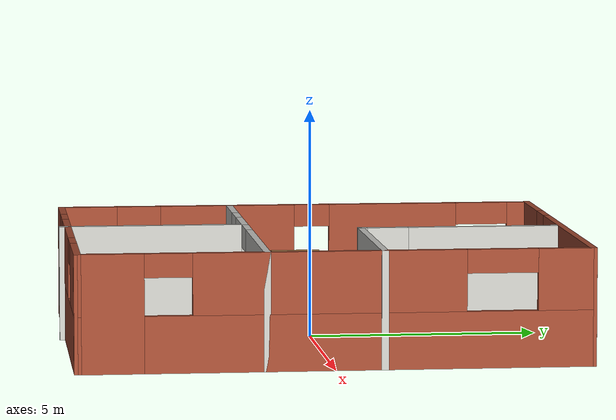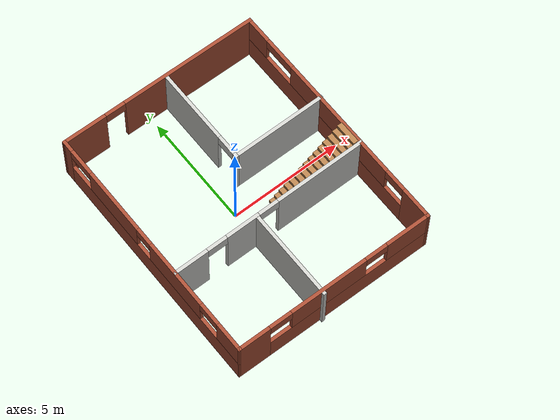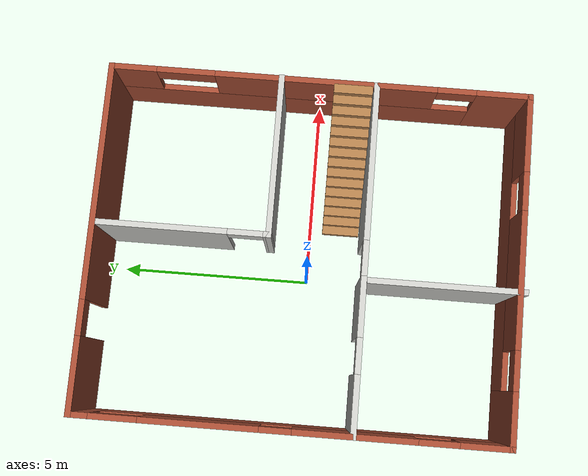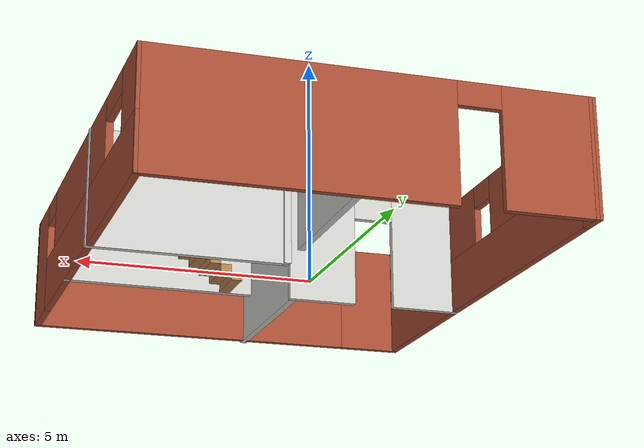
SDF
<?xml version='1.0'?>
<sdf version='1.6'>
  <model name='SinglefloorStructure'>
    <pose frame=''>0.515657 0.032341 0 0 -0 0</pose>
    <link name='Stairs_1'>
      <visual name='Stairs_1_Visual_0'>
        <pose frame=''>0.995916 -0.860774 0.083333 0 -0 1.5708</pose>
        <geometry>
          <box>
            <size>1 0.233333 0.166667</size>
          </box>
        </geometry>
        <material>
          <script>
            <uri>file://media/materials/scripts/gazebo.material</uri>
            <name>Gazebo/Wood</name>
          </script>
          <ambient>1 1 1 1</ambient>
        </material>
        <meta>
          <layer>0</layer>
        </meta>
      </visual>
      <collision name='Stairs_1_Collision_0'>
        <geometry>
          <box>
            <size>1 0.233333 0.166667</size>
          </box>
        </geometry>
        <pose frame=''>0.995916 -0.860774 0.083333 0 -0 1.5708</pose>
      </collision>
      <visual name='Stairs_1_Visual_1'>
        <pose frame=''>1.22925 -0.860774 0.25 0 -0 1.5708</pose>
        <geometry>
          <box>
            <size>1 0.233333 0.166667</size>
          </box>
        </geometry>
        <material>
          <script>
            <uri>file://media/materials/scripts/gazebo.material</uri>
            <name>Gazebo/Wood</name>
          </script>
          <ambient>1 1 1 1</ambient>
        </material>
        <meta>
          <layer>0</layer>
        </meta>
      </visual>
      <collision name='Stairs_1_Collision_1'>
        <geometry>
          <box>
            <size>1 0.233333 0.166667</size>
          </box>
        </geometry>
        <pose frame=''>1.22925 -0.860774 0.25 0 -0 1.5708</pose>
      </collision>
      <visual name='Stairs_1_Visual_2'>
        <pose frame=''>1.46258 -0.860774 0.416667 0 -0 1.5708</pose>
        <geometry>
          <box>
            <size>1 0.233333 0.166667</size>
          </box>
        </geometry>
        <material>
          <script>
            <uri>file://media/materials/scripts/gazebo.material</uri>
            <name>Gazebo/Wood</name>
          </script>
          <ambient>1 1 1 1</ambient>
        </material>
        <meta>
          <layer>0</layer>
        </meta>
      </visual>
      <collision name='Stairs_1_Collision_2'>
        <geometry>
          <box>
            <size>1 0.233333 0.166667</size>
          </box>
        </geometry>
        <pose frame=''>1.46258 -0.860774 0.416667 0 -0 1.5708</pose>
      </collision>
      <visual name='Stairs_1_Visual_3'>
        <pose frame=''>1.69592 -0.860774 0.583333 0 -0 1.5708</pose>
        <geometry>
          <box>
            <size>1 0.233333 0.166667</size>
          </box>
        </geometry>
        <material>
          <script>
            <uri>file://media/materials/scripts/gazebo.material</uri>
            <name>Gazebo/Wood</name>
          </script>
          <ambient>1 1 1 1</ambient>
        </material>
        <meta>
          <layer>0</layer>
        </meta>
      </visual>
      <collision name='Stairs_1_Collision_3'>
        <geometry>
          <box>
            <size>1 0.233333 0.166667</size>
          </box>
        </geometry>
        <pose frame=''>1.69592 -0.860774 0.583333 0 -0 1.5708</pose>
      </collision>
      <visual name='Stairs_1_Visual_4'>
        <pose frame=''>1.92925 -0.860773 0.75 0 -0 1.5708</pose>
        <geometry>
          <box>
            <size>1 0.233333 0.166667</size>
          </box>
        </geometry>
        <material>
          <script>
            <uri>file://media/materials/scripts/gazebo.material</uri>
            <name>Gazebo/Wood</name>
          </script>
          <ambient>1 1 1 1</ambient>
        </material>
        <meta>
          <layer>0</layer>
        </meta>
      </visual>
      <collision name='Stairs_1_Collision_4'>
        <geometry>
          <box>
            <size>1 0.233333 0.166667</size>
          </box>
        </geometry>
        <pose frame=''>1.92925 -0.860773 0.75 0 -0 1.5708</pose>
      </collision>
      <visual name='Stairs_1_Visual_5'>
        <pose frame=''>2.16258 -0.860773 0.916667 0 -0 1.5708</pose>
        <geometry>
          <box>
            <size>1 0.233333 0.166667</size>
          </box>
        </geometry>
        <material>
          <script>
            <uri>file://media/materials/scripts/gazebo.material</uri>
            <name>Gazebo/Wood</name>
          </script>
          <ambient>1 1 1 1</ambient>
        </material>
        <meta>
          <layer>0</layer>
        </meta>
      </visual>
      <collision name='Stairs_1_Collision_5'>
        <geometry>
          <box>
            <size>1 0.233333 0.166667</size>
          </box>
        </geometry>
        <pose frame=''>2.16258 -0.860773 0.916667 0 -0 1.5708</pose>
      </collision>
      <visual name='Stairs_1_Visual_6'>
        <pose frame=''>2.39592 -0.860773 1.08333 0 -0 1.5708</pose>
        <geometry>
          <box>
            <size>1 0.233333 0.166667</size>
          </box>
        </geometry>
        <material>
          <script>
            <uri>file://media/materials/scripts/gazebo.material</uri>
            <name>Gazebo/Wood</name>
          </script>
          <ambient>1 1 1 1</ambient>
        </material>
        <meta>
          <layer>0</layer>
        </meta>
      </visual>
      <collision name='Stairs_1_Collision_6'>
        <geometry>
          <box>
            <size>1 0.233333 0.166667</size>
          </box>
        </geometry>
        <pose frame=''>2.39592 -0.860773 1.08333 0 -0 1.5708</pose>
      </collision>
      <visual name='Stairs_1_Visual_7'>
        <pose frame=''>2.62925 -0.860773 1.25 0 -0 1.5708</pose>
        <geometry>
          <box>
            <size>1 0.233333 0.166667</size>
          </box>
        </geometry>
        <material>
          <script>
            <uri>file://media/materials/scripts/gazebo.material</uri>
            <name>Gazebo/Wood</name>
          </script>
          <ambient>1 1 1 1</ambient>
        </material>
        <meta>
          <layer>0</layer>
        </meta>
      </visual>
      <collision name='Stairs_1_Collision_7'>
        <geometry>
          <box>
            <size>1 0.233333 0.166667</size>
          </box>
        </geometry>
        <pose frame=''>2.62925 -0.860773 1.25 0 -0 1.5708</pose>
      </collision>
      <visual name='Stairs_1_Visual_8'>
        <pose frame=''>2.86258 -0.860773 1.41667 0 -0 1.5708</pose>
        <geometry>
          <box>
            <size>1 0.233333 0.166667</size>
          </box>
        </geometry>
        <material>
          <script>
            <uri>file://media/materials/scripts/gazebo.material</uri>
            <name>Gazebo/Wood</name>
          </script>
          <ambient>1 1 1 1</ambient>
        </material>
        <meta>
          <layer>0</layer>
        </meta>
      </visual>
      <collision name='Stairs_1_Collision_8'>
        <geometry>
          <box>
            <size>1 0.233333 0.166667</size>
          </box>
        </geometry>
        <pose frame=''>2.86258 -0.860773 1.41667 0 -0 1.5708</pose>
      </collision>
      <visual name='Stairs_1_Visual_9'>
        <pose frame=''>3.09592 -0.860773 1.58333 0 -0 1.5708</pose>
        <geometry>
          <box>
            <size>1 0.233333 0.166667</size>
          </box>
        </geometry>
        <material>
          <script>
            <uri>file://media/materials/scripts/gazebo.material</uri>
            <name>Gazebo/Wood</name>
          </script>
          <ambient>1 1 1 1</ambient>
        </material>
        <meta>
          <layer>0</layer>
        </meta>
      </visual>
      <collision name='Stairs_1_Collision_9'>
        <geometry>
          <box>
            <size>1 0.233333 0.166667</size>
          </box>
        </geometry>
        <pose frame=''>3.09592 -0.860773 1.58333 0 -0 1.5708</pose>
      </collision>
      <visual name='Stairs_1_Visual_10'>
        <pose frame=''>3.32925 -0.860773 1.75 0 -0 1.5708</pose>
        <geometry>
          <box>
            <size>1 0.233333 0.166667</size>
          </box>
        </geometry>
        <material>
          <script>
            <uri>file://media/materials/scripts/gazebo.material</uri>
            <name>Gazebo/Wood</name>
          </script>
          <ambient>1 1 1 1</ambient>
        </material>
        <meta>
          <layer>0</layer>
        </meta>
      </visual>
      <collision name='Stairs_1_Collision_10'>
        <geometry>
          <box>
            <size>1 0.233333 0.166667</size>
          </box>
        </geometry>
        <pose frame=''>3.32925 -0.860773 1.75 0 -0 1.5708</pose>
      </collision>
      <visual name='Stairs_1_Visual_11'>
        <pose frame=''>3.56258 -0.860773 1.91667 0 -0 1.5708</pose>
        <geometry>
          <box>
            <size>1 0.233333 0.166667</size>
          </box>
        </geometry>
        <material>
          <script>
            <uri>file://media/materials/scripts/gazebo.material</uri>
            <name>Gazebo/Wood</name>
          </script>
          <ambient>1 1 1 1</ambient>
        </material>
        <meta>
          <layer>0</layer>
        </meta>
      </visual>
      <collision name='Stairs_1_Collision_11'>
        <geometry>
          <box>
            <size>1 0.233333 0.166667</size>
          </box>
        </geometry>
        <pose frame=''>3.56258 -0.860773 1.91667 0 -0 1.5708</pose>
      </collision>
      <visual name='Stairs_1_Visual_12'>
        <pose frame=''>3.79592 -0.860773 2.08333 0 -0 1.5708</pose>
        <geometry>
          <box>
            <size>1 0.233333 0.166667</size>
          </box>
        </geometry>
        <material>
          <script>
            <uri>file://media/materials/scripts/gazebo.material</uri>
            <name>Gazebo/Wood</name>
          </script>
          <ambient>1 1 1 1</ambient>
        </material>
        <meta>
          <layer>0</layer>
        </meta>
      </visual>
      <collision name='Stairs_1_Collision_12'>
        <geometry>
          <box>
            <size>1 0.233333 0.166667</size>
          </box>
        </geometry>
        <pose frame=''>3.79592 -0.860773 2.08333 0 -0 1.5708</pose>
      </collision>
      <visual name='Stairs_1_Visual_13'>
        <pose frame=''>4.02925 -0.860773 2.25 0 -0 1.5708</pose>
        <geometry>
          <box>
            <size>1 0.233333 0.166667</size>
          </box>
        </geometry>
        <material>
          <script>
            <uri>file://media/materials/scripts/gazebo.material</uri>
            <name>Gazebo/Wood</name>
          </script>
          <ambient>1 1 1 1</ambient>
        </material>
        <meta>
          <layer>0</layer>
        </meta>
      </visual>
      <collision name='Stairs_1_Collision_13'>
        <geometry>
          <box>
            <size>1 0.233333 0.166667</size>
          </box>
        </geometry>
        <pose frame=''>4.02925 -0.860773 2.25 0 -0 1.5708</pose>
      </collision>
      <visual name='Stairs_1_Visual_14'>
        <pose frame=''>4.26258 -0.860773 2.41667 0 -0 1.5708</pose>
        <geometry>
          <box>
            <size>1 0.233333 0.166667</size>
          </box>
        </geometry>
        <material>
          <script>
            <uri>file://media/materials/scripts/gazebo.material</uri>
            <name>Gazebo/Wood</name>
          </script>
          <ambient>1 1 1 1</ambient>
        </material>
        <meta>
          <layer>0</layer>
        </meta>
      </visual>
      <collision name='Stairs_1_Collision_14'>
        <geometry>
          <box>
            <size>1 0.233333 0.166667</size>
          </box>
        </geometry>
        <pose frame=''>4.26258 -0.860773 2.41667 0 -0 1.5708</pose>
      </collision>
    </link>
    <link name='Wall_0'>
      <pose frame=''>-0.009657 5.42016 0 0 -0 3.13244</pose>
      <visual name='Wall_0_Visual_0'>
        <pose frame=''>-1.43962 0 1.25 0 -0 0</pose>
        <geometry>
          <box>
            <size>6.12112 0.15 2.5</size>
          </box>
        </geometry>
        <material>
          <script>
            <uri>file://media/materials/scripts/gazebo.material</uri>
            <name>Gazebo/Bricks</name>
          </script>
          <ambient>1 1 1 1</ambient>
        </material>
        <meta>
          <layer>0</layer>
        </meta>
      </visual>
      <collision name='Wall_0_Collision_0'>
        <geometry>
          <box>
            <size>6.12112 0.15 2.5</size>
          </box>
        </geometry>
        <pose frame=''>-1.43962 0 1.25 0 -0 0</pose>
      </collision>
      <visual name='Wall_0_Visual_1'>
        <pose frame=''>3.51056 0 1.25 0 -0 0</pose>
        <geometry>
          <box>
            <size>1.97925 0.15 2.5</size>
          </box>
        </geometry>
        <material>
          <script>
            <uri>file://media/materials/scripts/gazebo.material</uri>
            <name>Gazebo/Bricks</name>
          </script>
          <ambient>1 1 1 1</ambient>
        </material>
        <meta>
          <layer>0</layer>
        </meta>
      </visual>
      <collision name='Wall_0_Collision_1'>
        <geometry>
          <box>
            <size>1.97925 0.15 2.5</size>
          </box>
        </geometry>
        <pose frame=''>3.51056 0 1.25 0 -0 0</pose>
      </collision>
      <visual name='Wall_0_Visual_2'>
        <pose frame=''>2.07094 0 2.25 0 -0 0</pose>
        <geometry>
          <box>
            <size>0.9 0.15 0.5</size>
          </box>
        </geometry>
        <material>
          <script>
            <uri>file://media/materials/scripts/gazebo.material</uri>
            <name>Gazebo/Bricks</name>
          </script>
          <ambient>1 1 1 1</ambient>
        </material>
        <meta>
          <layer>0</layer>
        </meta>
      </visual>
      <collision name='Wall_0_Collision_2'>
        <geometry>
          <box>
            <size>0.9 0.15 0.5</size>
          </box>
        </geometry>
        <pose frame=''>2.07094 0 2.25 0 -0 0</pose>
      </collision>
    </link>
    <link name='Wall_1'>
      <pose frame=''>-4.43466 0.076159 0 0 0 -1.5708</pose>
      <visual name='Wall_1_Visual_0'>
        <pose frame=''>-5.18314 0 1.25 0 -0 0</pose>
        <geometry>
          <box>
            <size>0.552756 0.15 2.5</size>
          </box>
        </geometry>
        <material>
          <script>
            <uri>file://media/materials/scripts/gazebo.material</uri>
            <name>Gazebo/Bricks</name>
          </script>
          <ambient>1 1 1 1</ambient>
        </material>
        <meta>
          <layer>0</layer>
        </meta>
      </visual>
      <collision name='Wall_1_Collision_0'>
        <geometry>
          <box>
            <size>0.552756 0.15 2.5</size>
          </box>
        </geometry>
        <pose frame=''>-5.18314 0 1.25 0 -0 0</pose>
      </collision>
      <visual name='Wall_1_Visual_1'>
        <pose frame=''>0.276378 0 0.6 0 -0 0</pose>
        <geometry>
          <box>
            <size>10.3663 0.15 1.2</size>
          </box>
        </geometry>
        <material>
          <script>
            <uri>file://media/materials/scripts/gazebo.material</uri>
            <name>Gazebo/Bricks</name>
          </script>
          <ambient>1 1 1 1</ambient>
        </material>
        <meta>
          <layer>0</layer>
        </meta>
      </visual>
      <collision name='Wall_1_Collision_1'>
        <geometry>
          <box>
            <size>10.3663 0.15 1.2</size>
          </box>
        </geometry>
        <pose frame=''>0.276378 0 0.6 0 -0 0</pose>
      </collision>
      <visual name='Wall_1_Visual_2'>
        <pose frame=''>-2.23369 0 1.85 0 -0 0</pose>
        <geometry>
          <box>
            <size>2.94614 0.15 1.3</size>
          </box>
        </geometry>
        <material>
          <script>
            <uri>file://media/materials/scripts/gazebo.material</uri>
            <name>Gazebo/Bricks</name>
          </script>
          <ambient>1 1 1 1</ambient>
        </material>
        <meta>
          <layer>0</layer>
        </meta>
      </visual>
      <collision name='Wall_1_Collision_2'>
        <geometry>
          <box>
            <size>2.94614 0.15 1.3</size>
          </box>
        </geometry>
        <pose frame=''>-2.23369 0 1.85 0 -0 0</pose>
      </collision>
      <visual name='Wall_1_Visual_3'>
        <pose frame=''>1.57775 0 1.85 0 -0 0</pose>
        <geometry>
          <box>
            <size>3.07673 0.15 1.3</size>
          </box>
        </geometry>
        <material>
          <script>
            <uri>file://media/materials/scripts/gazebo.material</uri>
            <name>Gazebo/Bricks</name>
          </script>
          <ambient>1 1 1 1</ambient>
        </material>
        <meta>
          <layer>0</layer>
        </meta>
      </visual>
      <collision name='Wall_1_Collision_3'>
        <geometry>
          <box>
            <size>3.07673 0.15 1.3</size>
          </box>
        </geometry>
        <pose frame=''>1.57775 0 1.85 0 -0 0</pose>
      </collision>
      <visual name='Wall_1_Visual_4'>
        <pose frame=''>4.78781 0 1.85 0 -0 0</pose>
        <geometry>
          <box>
            <size>1.3434 0.15 1.3</size>
          </box>
        </geometry>
        <material>
          <script>
            <uri>file://media/materials/scripts/gazebo.material</uri>
            <name>Gazebo/Bricks</name>
          </script>
          <ambient>1 1 1 1</ambient>
        </material>
        <meta>
          <layer>0</layer>
        </meta>
      </visual>
      <collision name='Wall_1_Collision_4'>
        <geometry>
          <box>
            <size>1.3434 0.15 1.3</size>
          </box>
        </geometry>
        <pose frame=''>4.78781 0 1.85 0 -0 0</pose>
      </collision>
      <visual name='Wall_1_Visual_5'>
        <pose frame=''>-4.30676 0 2.25 0 -0 0</pose>
        <geometry>
          <box>
            <size>1.2 0.15 0.5</size>
          </box>
        </geometry>
        <material>
          <script>
            <uri>file://media/materials/scripts/gazebo.material</uri>
            <name>Gazebo/Bricks</name>
          </script>
          <ambient>1 1 1 1</ambient>
        </material>
        <meta>
          <layer>0</layer>
        </meta>
      </visual>
      <collision name='Wall_1_Collision_5'>
        <geometry>
          <box>
            <size>1.2 0.15 0.5</size>
          </box>
        </geometry>
        <pose frame=''>-4.30676 0 2.25 0 -0 0</pose>
      </collision>
      <visual name='Wall_1_Visual_6'>
        <pose frame=''>-0.360618 0 2.25 0 -0 0</pose>
        <geometry>
          <box>
            <size>0.8 0.15 0.5</size>
          </box>
        </geometry>
        <material>
          <script>
            <uri>file://media/materials/scripts/gazebo.material</uri>
            <name>Gazebo/Bricks</name>
          </script>
          <ambient>1 1 1 1</ambient>
        </material>
        <meta>
          <layer>0</layer>
        </meta>
      </visual>
      <collision name='Wall_1_Collision_6'>
        <geometry>
          <box>
            <size>0.8 0.15 0.5</size>
          </box>
        </geometry>
        <pose frame=''>-0.360618 0 2.25 0 -0 0</pose>
      </collision>
      <visual name='Wall_1_Visual_7'>
        <pose frame=''>3.61611 0 2.25 0 -0 0</pose>
        <geometry>
          <box>
            <size>1 0.15 0.5</size>
          </box>
        </geometry>
        <material>
          <script>
            <uri>file://media/materials/scripts/gazebo.material</uri>
            <name>Gazebo/Bricks</name>
          </script>
          <ambient>1 1 1 1</ambient>
        </material>
        <meta>
          <layer>0</layer>
        </meta>
      </visual>
      <collision name='Wall_1_Collision_7'>
        <geometry>
          <box>
            <size>1 0.15 0.5</size>
          </box>
        </geometry>
        <pose frame=''>3.61611 0 2.25 0 -0 0</pose>
      </collision>
    </link>
    <link name='Wall_11'>
      <collision name='Wall_11_Collision'>
        <geometry>
          <box>
            <size>4.25 0.15 2.5</size>
          </box>
        </geometry>
        <pose frame=''>0 0 1.25 0 -0 0</pose>
      </collision>
      <visual name='Wall_11_Visual'>
        <pose frame=''>0 0 1.25 0 -0 0</pose>
        <geometry>
          <box>
            <size>4.25 0.15 2.5</size>
          </box>
        </geometry>
        <material>
          <script>
            <uri>file://media/materials/scripts/gazebo.material</uri>
            <name>Gazebo/CeilingTiled</name>
          </script>
          <ambient>0.760784 0.662745 0.627451 1</ambient>
        </material>
        <meta>
          <layer>0</layer>
        </meta>
      </visual>
      <pose frame=''>2.38534 0.994658 0 0 -0 3.14159</pose>
    </link>
    <link name='Wall_16'>
      <pose frame=''>0.335343 3.14966 0 0 -0 1.5708</pose>
      <visual name='Wall_16_Visual_0'>
        <pose frame=''>-2.12351 0 1.25 0 -0 0</pose>
        <geometry>
          <box>
            <size>0.213027 0.15 2.5</size>
          </box>
        </geometry>
        <material>
          <script>
            <uri>file://media/materials/scripts/gazebo.material</uri>
            <name>Gazebo/CeilingTiled</name>
          </script>
          <ambient>0.760784 0.662745 0.627451 1</ambient>
        </material>
        <meta>
          <layer>0</layer>
        </meta>
      </visual>
      <collision name='Wall_16_Collision_0'>
        <geometry>
          <box>
            <size>0.213027 0.15 2.5</size>
          </box>
        </geometry>
        <pose frame=''>-2.12351 0 1.25 0 -0 0</pose>
      </collision>
      <visual name='Wall_16_Visual_1'>
        <pose frame=''>0.556514 0 1.25 0 -0 0</pose>
        <geometry>
          <box>
            <size>3.34701 0.15 2.5</size>
          </box>
        </geometry>
        <material>
          <script>
            <uri>file://media/materials/scripts/gazebo.material</uri>
            <name>Gazebo/CeilingTiled</name>
          </script>
          <ambient>0.760784 0.662745 0.627451 1</ambient>
        </material>
        <meta>
          <layer>0</layer>
        </meta>
      </visual>
      <collision name='Wall_16_Collision_1'>
        <geometry>
          <box>
            <size>3.34701 0.15 2.5</size>
          </box>
        </geometry>
        <pose frame=''>0.556514 0 1.25 0 -0 0</pose>
      </collision>
      <visual name='Wall_16_Visual_2'>
        <pose frame=''>-1.56699 0 2.25 0 -0 0</pose>
        <geometry>
          <box>
            <size>0.9 0.15 0.5</size>
          </box>
        </geometry>
        <material>
          <script>
            <uri>file://media/materials/scripts/gazebo.material</uri>
            <name>Gazebo/CeilingTiled</name>
          </script>
          <ambient>0.760784 0.662745 0.627451 1</ambient>
        </material>
        <meta>
          <layer>0</layer>
        </meta>
      </visual>
      <collision name='Wall_16_Collision_2'>
        <geometry>
          <box>
            <size>0.9 0.15 0.5</size>
          </box>
        </geometry>
        <pose frame=''>-1.56699 0 2.25 0 -0 0</pose>
      </collision>
    </link>
    <link name='Wall_2'>
      <pose frame=''>-0.009657 -5.34884 0 0 0 -0.009152</pose>
      <visual name='Wall_2_Visual_0'>
        <pose frame=''>-3.76798 0 1.25 0 -0 0</pose>
        <geometry>
          <box>
            <size>1.46441 0.15 2.5</size>
          </box>
        </geometry>
        <material>
          <script>
            <uri>file://media/materials/scripts/gazebo.material</uri>
            <name>Gazebo/Bricks</name>
          </script>
          <ambient>1 1 1 1</ambient>
        </material>
        <meta>
          <layer>0</layer>
        </meta>
      </visual>
      <collision name='Wall_2_Collision_0'>
        <geometry>
          <box>
            <size>1.46441 0.15 2.5</size>
          </box>
        </geometry>
        <pose frame=''>-3.76798 0 1.25 0 -0 0</pose>
      </collision>
      <visual name='Wall_2_Visual_1'>
        <pose frame=''>0.732206 0 0.6 0 -0 0</pose>
        <geometry>
          <box>
            <size>7.53596 0.15 1.2</size>
          </box>
        </geometry>
        <material>
          <script>
            <uri>file://media/materials/scripts/gazebo.material</uri>
            <name>Gazebo/Bricks</name>
          </script>
          <ambient>1 1 1 1</ambient>
        </material>
        <meta>
          <layer>0</layer>
        </meta>
      </visual>
      <collision name='Wall_2_Collision_1'>
        <geometry>
          <box>
            <size>7.53596 0.15 1.2</size>
          </box>
        </geometry>
        <pose frame=''>0.732206 0 0.6 0 -0 0</pose>
      </collision>
      <visual name='Wall_2_Visual_2'>
        <pose frame=''>-0.287905 0 1.85 0 -0 0</pose>
        <geometry>
          <box>
            <size>3.49573 0.15 1.3</size>
          </box>
        </geometry>
        <material>
          <script>
            <uri>file://media/materials/scripts/gazebo.material</uri>
            <name>Gazebo/Bricks</name>
          </script>
          <ambient>1 1 1 1</ambient>
        </material>
        <meta>
          <layer>0</layer>
        </meta>
      </visual>
      <collision name='Wall_2_Collision_2'>
        <geometry>
          <box>
            <size>3.49573 0.15 1.3</size>
          </box>
        </geometry>
        <pose frame=''>-0.287905 0 1.85 0 -0 0</pose>
      </collision>
      <visual name='Wall_2_Visual_3'>
        <pose frame=''>3.48007 0 1.85 0 -0 0</pose>
        <geometry>
          <box>
            <size>2.04022 0.15 1.3</size>
          </box>
        </geometry>
        <material>
          <script>
            <uri>file://media/materials/scripts/gazebo.material</uri>
            <name>Gazebo/Bricks</name>
          </script>
          <ambient>1 1 1 1</ambient>
        </material>
        <meta>
          <layer>0</layer>
        </meta>
      </visual>
      <collision name='Wall_2_Collision_3'>
        <geometry>
          <box>
            <size>2.04022 0.15 1.3</size>
          </box>
        </geometry>
        <pose frame=''>3.48007 0 1.85 0 -0 0</pose>
      </collision>
      <visual name='Wall_2_Visual_4'>
        <pose frame=''>-2.53577 0 2.25 0 -0 0</pose>
        <geometry>
          <box>
            <size>1 0.15 0.5</size>
          </box>
        </geometry>
        <material>
          <script>
            <uri>file://media/materials/scripts/gazebo.material</uri>
            <name>Gazebo/Bricks</name>
          </script>
          <ambient>1 1 1 1</ambient>
        </material>
        <meta>
          <layer>0</layer>
        </meta>
      </visual>
      <collision name='Wall_2_Collision_4'>
        <geometry>
          <box>
            <size>1 0.15 0.5</size>
          </box>
        </geometry>
        <pose frame=''>-2.53577 0 2.25 0 -0 0</pose>
      </collision>
      <visual name='Wall_2_Visual_5'>
        <pose frame=''>1.95996 0 2.25 0 -0 0</pose>
        <geometry>
          <box>
            <size>1 0.15 0.5</size>
          </box>
        </geometry>
        <material>
          <script>
            <uri>file://media/materials/scripts/gazebo.material</uri>
            <name>Gazebo/Bricks</name>
          </script>
          <ambient>1 1 1 1</ambient>
        </material>
        <meta>
          <layer>0</layer>
        </meta>
      </visual>
      <collision name='Wall_2_Collision_5'>
        <geometry>
          <box>
            <size>1 0.15 0.5</size>
          </box>
        </geometry>
        <pose frame=''>1.95996 0 2.25 0 -0 0</pose>
      </collision>
    </link>
    <link name='Wall_3'>
      <pose frame=''>4.41534 -0.004841 0 0 -0 1.5708</pose>
      <visual name='Wall_3_Visual_0'>
        <pose frame=''>-4.73202 0 1.25 0 -0 0</pose>
        <geometry>
          <box>
            <size>1.45499 0.15 2.5</size>
          </box>
        </geometry>
        <material>
          <script>
            <uri>file://media/materials/scripts/gazebo.material</uri>
            <name>Gazebo/Bricks</name>
          </script>
          <ambient>1 1 1 1</ambient>
        </material>
        <meta>
          <layer>0</layer>
        </meta>
      </visual>
      <collision name='Wall_3_Collision_0'>
        <geometry>
          <box>
            <size>1.45499 0.15 2.5</size>
          </box>
        </geometry>
        <pose frame=''>-4.73202 0 1.25 0 -0 0</pose>
      </collision>
      <visual name='Wall_3_Visual_1'>
        <pose frame=''>0.727496 0 0.6 0 -0 0</pose>
        <geometry>
          <box>
            <size>9.46404 0.15 1.2</size>
          </box>
        </geometry>
        <material>
          <script>
            <uri>file://media/materials/scripts/gazebo.material</uri>
            <name>Gazebo/Bricks</name>
          </script>
          <ambient>1 1 1 1</ambient>
        </material>
        <meta>
          <layer>0</layer>
        </meta>
      </visual>
      <collision name='Wall_3_Collision_1'>
        <geometry>
          <box>
            <size>9.46404 0.15 1.2</size>
          </box>
        </geometry>
        <pose frame=''>0.727496 0 0.6 0 -0 0</pose>
      </collision>
      <visual name='Wall_3_Visual_2'>
        <pose frame=''>-0.142236 0 1.85 0 -0 0</pose>
        <geometry>
          <box>
            <size>5.72457 0.15 1.3</size>
          </box>
        </geometry>
        <material>
          <script>
            <uri>file://media/materials/scripts/gazebo.material</uri>
            <name>Gazebo/Bricks</name>
          </script>
          <ambient>1 1 1 1</ambient>
        </material>
        <meta>
          <layer>0</layer>
        </meta>
      </visual>
      <collision name='Wall_3_Collision_2'>
        <geometry>
          <box>
            <size>5.72457 0.15 1.3</size>
          </box>
        </geometry>
        <pose frame=''>-0.142236 0 1.85 0 -0 0</pose>
      </collision>
      <visual name='Wall_3_Visual_3'>
        <pose frame=''>4.83978 0 1.85 0 -0 0</pose>
        <geometry>
          <box>
            <size>1.23946 0.15 1.3</size>
          </box>
        </geometry>
        <material>
          <script>
            <uri>file://media/materials/scripts/gazebo.material</uri>
            <name>Gazebo/Bricks</name>
          </script>
          <ambient>1 1 1 1</ambient>
        </material>
        <meta>
          <layer>0</layer>
        </meta>
      </visual>
      <collision name='Wall_3_Collision_3'>
        <geometry>
          <box>
            <size>1.23946 0.15 1.3</size>
          </box>
        </geometry>
        <pose frame=''>4.83978 0 1.85 0 -0 0</pose>
      </collision>
      <visual name='Wall_3_Visual_4'>
        <pose frame=''>-3.50452 0 2.25 0 -0 0</pose>
        <geometry>
          <box>
            <size>1 0.15 0.5</size>
          </box>
        </geometry>
        <material>
          <script>
            <uri>file://media/materials/scripts/gazebo.material</uri>
            <name>Gazebo/Bricks</name>
          </script>
          <ambient>1 1 1 1</ambient>
        </material>
        <meta>
          <layer>0</layer>
        </meta>
      </visual>
      <collision name='Wall_3_Collision_4'>
        <geometry>
          <box>
            <size>1 0.15 0.5</size>
          </box>
        </geometry>
        <pose frame=''>-3.50452 0 2.25 0 -0 0</pose>
      </collision>
      <visual name='Wall_3_Visual_5'>
        <pose frame=''>3.47005 0 2.25 0 -0 0</pose>
        <geometry>
          <box>
            <size>1.5 0.15 0.5</size>
          </box>
        </geometry>
        <material>
          <script>
            <uri>file://media/materials/scripts/gazebo.material</uri>
            <name>Gazebo/Bricks</name>
          </script>
          <ambient>1 1 1 1</ambient>
        </material>
        <meta>
          <layer>0</layer>
        </meta>
      </visual>
      <collision name='Wall_3_Collision_5'>
        <geometry>
          <box>
            <size>1.5 0.15 0.5</size>
          </box>
        </geometry>
        <pose frame=''>3.47005 0 2.25 0 -0 0</pose>
      </collision>
    </link>
    <link name='Wall_5'>
      <pose frame=''>-0.009657 -1.45934 0 0 -0 3.14159</pose>
      <visual name='Wall_5_Visual_0'>
        <pose frame=''>-2.45183 0 1.25 0 -0 0</pose>
        <geometry>
          <box>
            <size>4.09634 0.15 2.5</size>
          </box>
        </geometry>
        <material>
          <script>
            <uri>file://media/materials/scripts/gazebo.material</uri>
            <name>Gazebo/CeilingTiled</name>
          </script>
          <ambient>0.760784 0.662745 0.627451 1</ambient>
        </material>
        <meta>
          <layer>0</layer>
        </meta>
      </visual>
      <collision name='Wall_5_Collision_0'>
        <geometry>
          <box>
            <size>4.09634 0.15 2.5</size>
          </box>
        </geometry>
        <pose frame=''>-2.45183 0 1.25 0 -0 0</pose>
      </collision>
      <visual name='Wall_5_Visual_1'>
        <pose frame=''>1.26001 0 1.25 0 -0 0</pose>
        <geometry>
          <box>
            <size>1.52734 0.15 2.5</size>
          </box>
        </geometry>
        <material>
          <script>
            <uri>file://media/materials/scripts/gazebo.material</uri>
            <name>Gazebo/CeilingTiled</name>
          </script>
          <ambient>0.760784 0.662745 0.627451 1</ambient>
        </material>
        <meta>
          <layer>0</layer>
        </meta>
      </visual>
      <collision name='Wall_5_Collision_1'>
        <geometry>
          <box>
            <size>1.52734 0.15 2.5</size>
          </box>
        </geometry>
        <pose frame=''>1.26001 0 1.25 0 -0 0</pose>
      </collision>
      <visual name='Wall_5_Visual_2'>
        <pose frame=''>3.71184 0 1.25 0 -0 0</pose>
        <geometry>
          <box>
            <size>1.57633 0.15 2.5</size>
          </box>
        </geometry>
        <material>
          <script>
            <uri>file://media/materials/scripts/gazebo.material</uri>
            <name>Gazebo/CeilingTiled</name>
          </script>
          <ambient>0.760784 0.662745 0.627451 1</ambient>
        </material>
        <meta>
          <layer>0</layer>
        </meta>
      </visual>
      <collision name='Wall_5_Collision_2'>
        <geometry>
          <box>
            <size>1.57633 0.15 2.5</size>
          </box>
        </geometry>
        <pose frame=''>3.71184 0 1.25 0 -0 0</pose>
      </collision>
      <visual name='Wall_5_Visual_3'>
        <pose frame=''>0.04634 0 2.25 0 -0 0</pose>
        <geometry>
          <box>
            <size>0.9 0.15 0.5</size>
          </box>
        </geometry>
        <material>
          <script>
            <uri>file://media/materials/scripts/gazebo.material</uri>
            <name>Gazebo/CeilingTiled</name>
          </script>
          <ambient>0.760784 0.662745 0.627451 1</ambient>
        </material>
        <meta>
          <layer>0</layer>
        </meta>
      </visual>
      <collision name='Wall_5_Collision_3'>
        <geometry>
          <box>
            <size>0.9 0.15 0.5</size>
          </box>
        </geometry>
        <pose frame=''>0.04634 0 2.25 0 -0 0</pose>
      </collision>
      <visual name='Wall_5_Visual_4'>
        <pose frame=''>2.47367 0 2.25 0 -0 0</pose>
        <geometry>
          <box>
            <size>0.9 0.15 0.5</size>
          </box>
        </geometry>
        <material>
          <script>
            <uri>file://media/materials/scripts/gazebo.material</uri>
            <name>Gazebo/CeilingTiled</name>
          </script>
          <ambient>0.760784 0.662745 0.627451 1</ambient>
        </material>
        <meta>
          <layer>0</layer>
        </meta>
      </visual>
      <collision name='Wall_5_Collision_4'>
        <geometry>
          <box>
            <size>0.9 0.15 0.5</size>
          </box>
        </geometry>
        <pose frame=''>2.47367 0 2.25 0 -0 0</pose>
      </collision>
    </link>
    <link name='Wall_7'>
      <collision name='Wall_7_Collision'>
        <geometry>
          <box>
            <size>4 0.15 2.5</size>
          </box>
        </geometry>
        <pose frame=''>0 0 1.25 0 -0 0</pose>
      </collision>
      <visual name='Wall_7_Visual'>
        <pose frame=''>0 0 1.25 0 -0 0</pose>
        <geometry>
          <box>
            <size>4 0.15 2.5</size>
          </box>
        </geometry>
        <material>
          <script>
            <uri>file://media/materials/scripts/gazebo.material</uri>
            <name>Gazebo/CeilingTiled</name>
          </script>
          <ambient>0.760784 0.662745 0.627451 1</ambient>
        </material>
        <meta>
          <layer>0</layer>
        </meta>
      </visual>
      <pose frame=''>-0.612657 -3.53634 0 0 -0 1.5708</pose>
    </link>
    <static>1</static>
  </model>
</sdf>
